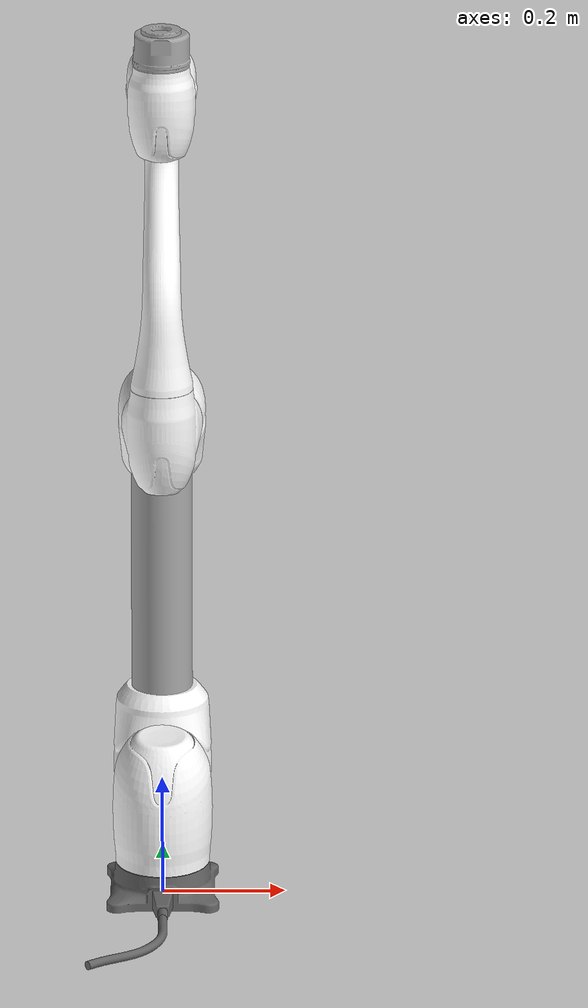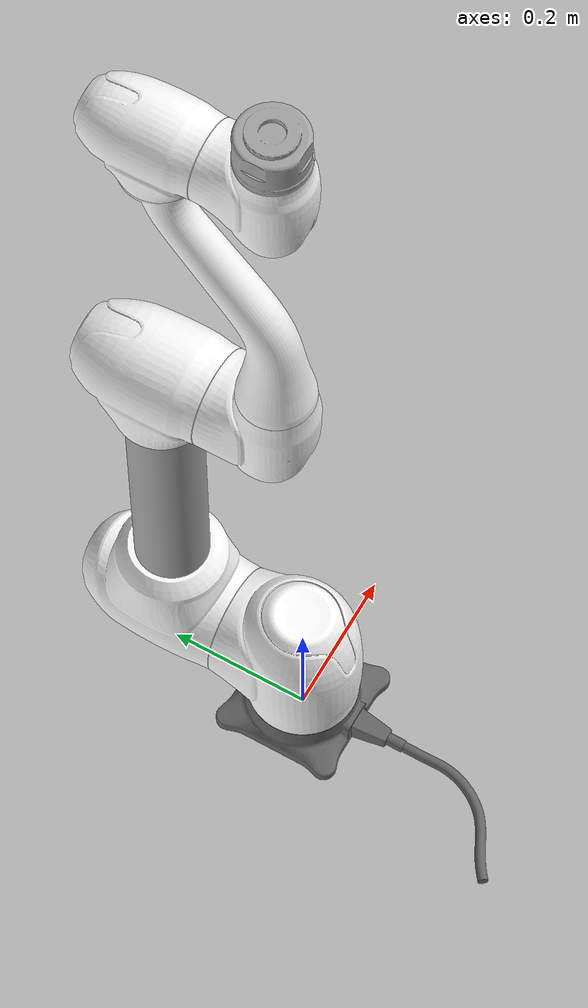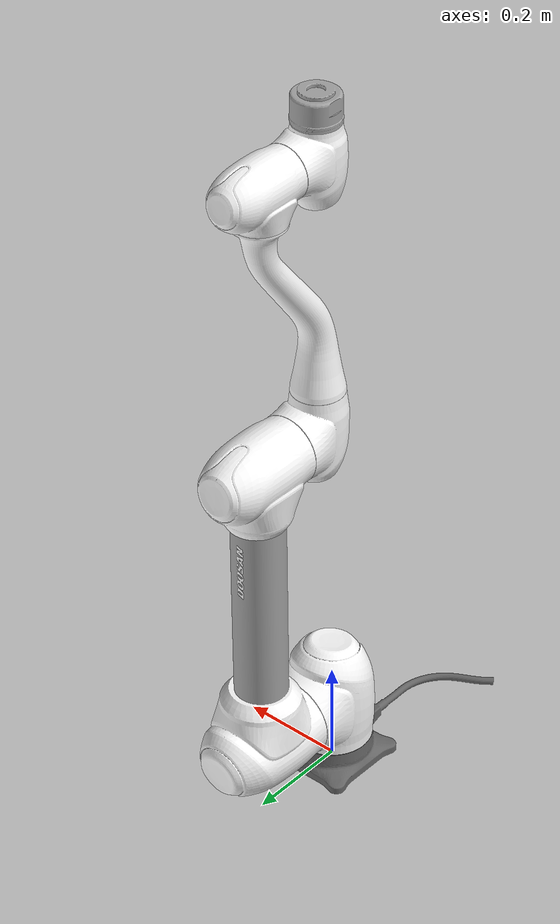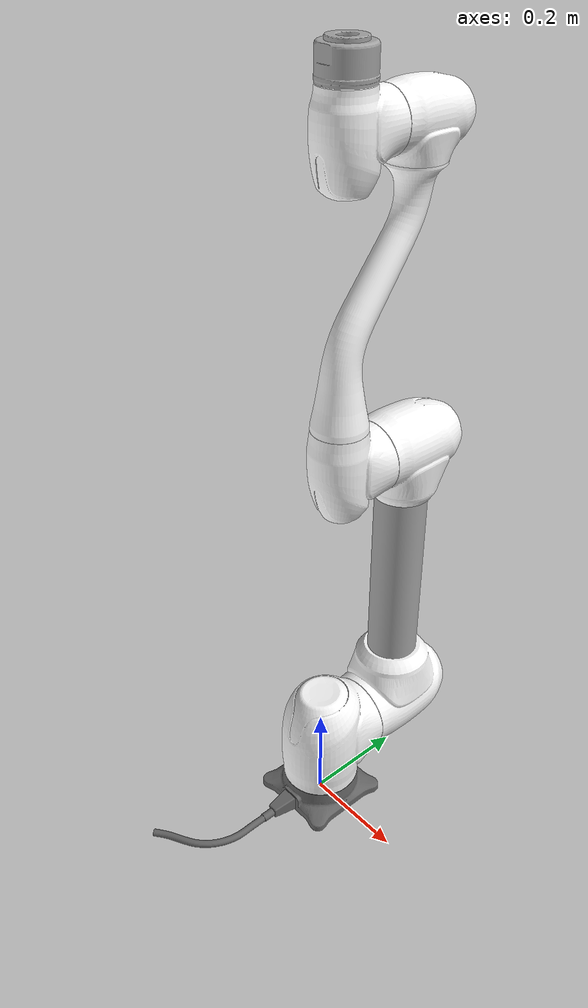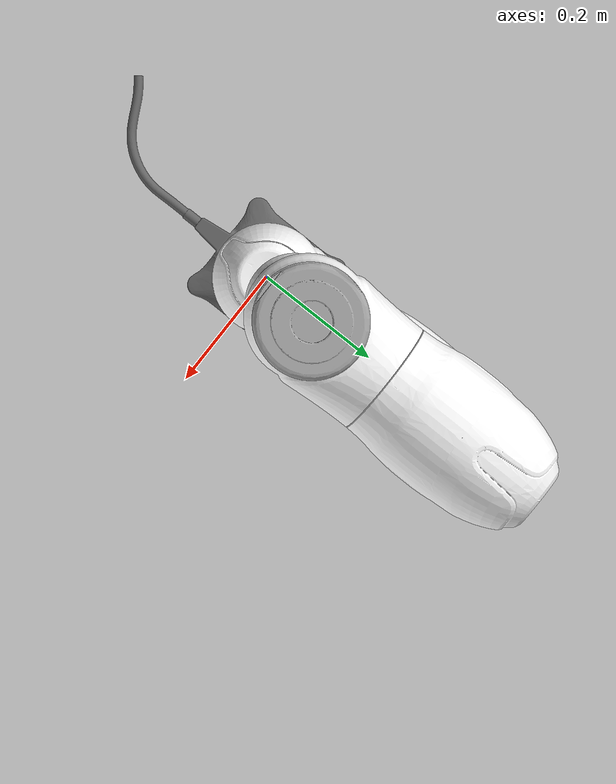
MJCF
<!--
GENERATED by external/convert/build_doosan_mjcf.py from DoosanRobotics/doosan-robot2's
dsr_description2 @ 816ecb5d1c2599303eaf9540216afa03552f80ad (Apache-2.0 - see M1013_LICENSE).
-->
<mujoco model="m1013">
  <compiler angle="radian" meshdir="meshes" autolimits="true"/>

  <default>
    <default class="m1013">
      <default class="joint">
        <joint axis="0 0 1" armature="0.1"/>
      </default>
      <default class="strong">
        <joint axis="0 0 1" damping="20" armature="0.1"/>
        <position kp="3000" kv="120"/>
      </default>
      <default class="medium">
        <joint axis="0 0 1" damping="10" armature="0.1"/>
        <position kp="3000" kv="90"/>
      </default>
      <default class="weak">
        <joint axis="0 0 1" damping="3" armature="0.1"/>
        <position kp="1200" kv="25"/>
      </default>
      <default class="visual">
        <geom type="mesh" contype="0" conaffinity="0" group="2"/>
      </default>
      <default class="collision">
        <geom type="mesh" group="3" rgba="0.6 0.1 0.1 0.35"/>
      </default>
      <site size="0.001" rgba="0.5 0.5 0.5 0.3" group="4"/>
    </default>
  </default>

  <asset>
    <material name="mat_MF1013_0_0" rgba="0.4 0.4 0.4 1"/>
    <material name="mat_MF1013_1_0" rgba="1 1 1 1"/>
    <material name="mat_MF1013_2_0" rgba="1 1 1 1"/>
    <material name="mat_MF1013_2_1__m0" rgba="1 1 1 1"/>
    <material name="mat_MF1013_2_1__m1" rgba="0.65 0.65 0.65 1"/>
    <material name="mat_MF1013_2_2" rgba="1 1 1 1"/>
    <material name="mat_MF1013_3_0" rgba="1 1 1 1"/>
    <material name="mat_MF1013_4_0" rgba="1 1 1 1"/>
    <material name="mat_MF1013_4_1" rgba="1 1 1 1"/>
    <material name="mat_MF1013_5_0" rgba="1 1 1 1"/>
    <material name="mat_MF1013_6_0" rgba="0.65 0.65 0.65 1"/>
    <mesh file="MF1013_0_0.obj"/>
    <mesh file="MF1013_1_0.obj"/>
    <mesh file="MF1013_2_0.obj"/>
    <mesh file="MF1013_2_1__m0.obj"/>
    <mesh file="MF1013_2_1__m1.obj"/>
    <mesh file="MF1013_2_2.obj"/>
    <mesh file="MF1013_3_0.obj"/>
    <mesh file="MF1013_4_0.obj"/>
    <mesh file="MF1013_4_1.obj"/>
    <mesh file="MF1013_5_0.obj"/>
    <mesh file="MF1013_6_0.obj"/>
  </asset>

  <worldbody>
    <body name="base_link" childclass="m1013">
      <inertial pos="-3.4e-05   -0.004815    0.048482" mass="4.12" fullinertia="0.016331 0.014945 0.022577 -6.4837e-06 2.0048e-06 -0.00051686"/>
      <geom class="visual" mesh="MF1013_0_0" material="mat_MF1013_0_0"/>
      <geom class="collision" mesh="MF1013_0_0"/>
      <body name="link_1" pos="0 0 0.1525" quat="1 0 0 0">
        <inertial pos="0.000119      0.0428   -0.006383" mass="7.8" fullinertia="0.04506 0.029679 0.047056 4.1126e-05 -5.2533e-05 -0.0019959"/>
        <joint name="joint_1" class="strong" range="-6.2832 6.2832"/>
        <geom class="visual" mesh="MF1013_1_0" material="mat_MF1013_1_0"/>
        <geom class="collision" mesh="MF1013_1_0"/>
        <body name="link_2" pos="0 0.0345 0" quat="0.4998982 -0.5001018 -0.5 -0.5">
          <inertial pos="0.25973    -5.3e-05     0.15782" mass="10.83" fullinertia="0.037586 0.84943 0.85021 -0.00036999 -0.0069927 4.0201e-05"/>
          <joint name="joint_2" class="strong" range="-6.2832 6.2832"/>
          <geom class="visual" mesh="MF1013_2_0" material="mat_MF1013_2_0"/>
          <geom class="visual" mesh="MF1013_2_1__m0" material="mat_MF1013_2_1__m0"/>
          <geom class="visual" mesh="MF1013_2_1__m1" material="mat_MF1013_2_1__m1"/>
          <geom class="visual" mesh="MF1013_2_2" material="mat_MF1013_2_2"/>
          <geom class="collision" mesh="MF1013_2_0"/>
          <geom class="collision" mesh="MF1013_2_1__m0"/>
          <geom class="collision" mesh="MF1013_2_1__m1"/>
          <geom class="collision" mesh="MF1013_2_2"/>
          <body name="link_3" pos="0.62 0 0" quat="0.7070348 0 0 0.7071788">
            <inertial pos="-1.5e-05   -0.006702    0.044608" mass="3.68" fullinertia="0.018748 0.018972 0.011502 7.8071e-06 -5.0324e-06 -0.00099342"/>
            <joint name="joint_3" class="medium" range="-2.7925 2.7925"/>
            <geom class="visual" mesh="MF1013_3_0" material="mat_MF1013_3_0"/>
            <geom class="collision" mesh="MF1013_3_0"/>
            <body name="link_4" pos="0 -0.559 0" quat="0.7070348 0.7071788 0 0">
              <inertial pos="7.1e-05    0.091879    -0.18252" mass="3.82" fullinertia="0.19063 0.17268 0.030386 -1.8037e-05 -3.8576e-05 -0.052996"/>
              <joint name="joint_4" class="weak" range="-6.2832 6.2832"/>
              <geom class="visual" mesh="MF1013_4_0" material="mat_MF1013_4_0"/>
              <geom class="visual" mesh="MF1013_4_1" material="mat_MF1013_4_1"/>
              <geom class="collision" mesh="MF1013_4_0"/>
              <geom class="collision" mesh="MF1013_4_1"/>
              <body name="link_5" pos="0 0 0" quat="0.7070348 -0.7071788 0 0">
                <inertial pos="-0.000273    0.003651    0.032088" mass="2.82" fullinertia="0.015583 0.011519 0.0088671 2.135e-05 -5.1895e-06 0.00042553"/>
                <joint name="joint_5" class="weak" range="-6.2832 6.2832"/>
                <geom class="visual" mesh="MF1013_5_0" material="mat_MF1013_5_0"/>
                <geom class="collision" mesh="MF1013_5_0"/>
                <body name="link_6" pos="0 -0.121 0" quat="0.7070348 0.7071788 0 0">
                  <inertial pos="-0.000292       7e-06     -0.0539" mass="1.16" fullinertia="0.0048282 0.0059519 0.0061263 4.1298e-06 6.9879e-06 4.252e-06"/>
                  <joint name="joint_6" class="weak" range="-6.2832 6.2832"/>
                  <geom class="visual" mesh="MF1013_6_0" material="mat_MF1013_6_0"/>
                  <geom class="collision" mesh="MF1013_6_0"/>
                  <site name="attachment_site" pos="0 0 0"/>
                </body>
              </body>
            </body>
          </body>
        </body>
      </body>
    </body>
  </worldbody>

  <contact>
    <exclude body1="base_link" body2="link_1"/>
    <exclude body1="link_1" body2="link_2"/>
    <exclude body1="link_2" body2="link_3"/>
    <exclude body1="link_3" body2="link_4"/>
    <exclude body1="link_4" body2="link_5"/>
    <exclude body1="link_5" body2="link_6"/>
  </contact>

  <actuator>
    <position class="strong" name="joint_1" joint="joint_1" ctrlrange="-6.2832 6.2832" forcerange="-346 346"/>
    <position class="strong" name="joint_2" joint="joint_2" ctrlrange="-6.2832 6.2832" forcerange="-346 346"/>
    <position class="medium" name="joint_3" joint="joint_3" ctrlrange="-2.7925 2.7925" forcerange="-163 163"/>
    <position class="weak" name="joint_4" joint="joint_4" ctrlrange="-6.2832 6.2832" forcerange="-50 50"/>
    <position class="weak" name="joint_5" joint="joint_5" ctrlrange="-6.2832 6.2832" forcerange="-50 50"/>
    <position class="weak" name="joint_6" joint="joint_6" ctrlrange="-6.2832 6.2832" forcerange="-50 50"/>
  </actuator>

  <keyframe>
    <!-- Elbow-up over the workspace, the stance Doosan's own examples start from. -->
    <key name="home" qpos="0 0 1.5708 0 1.5708 0" ctrl="0 0 1.5708 0 1.5708 0"/>
  </keyframe>
</mujoco>
